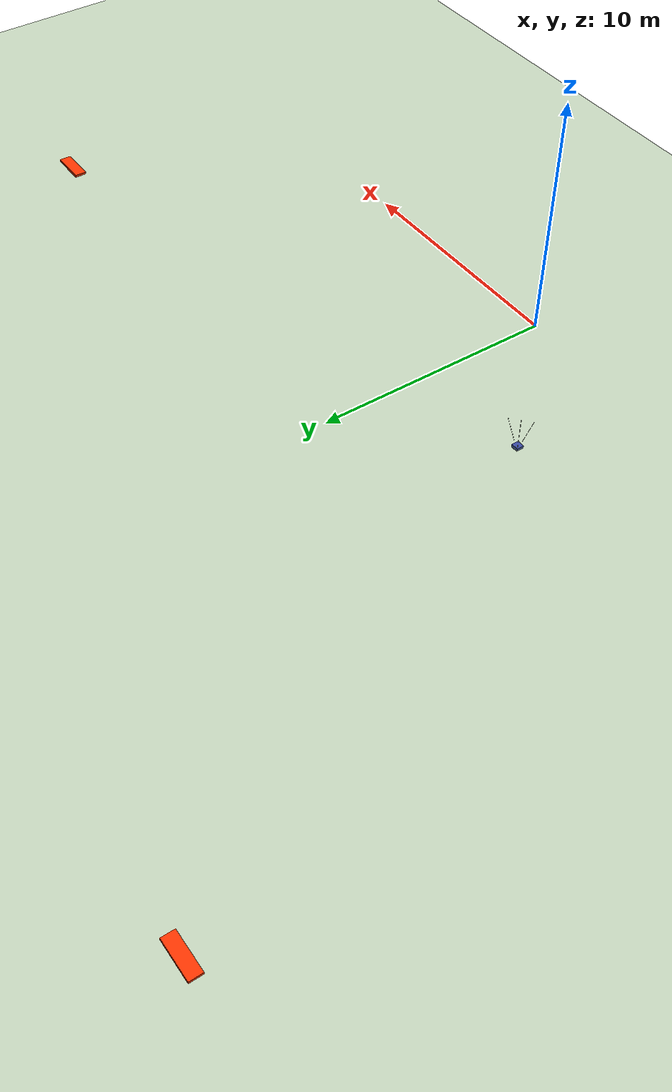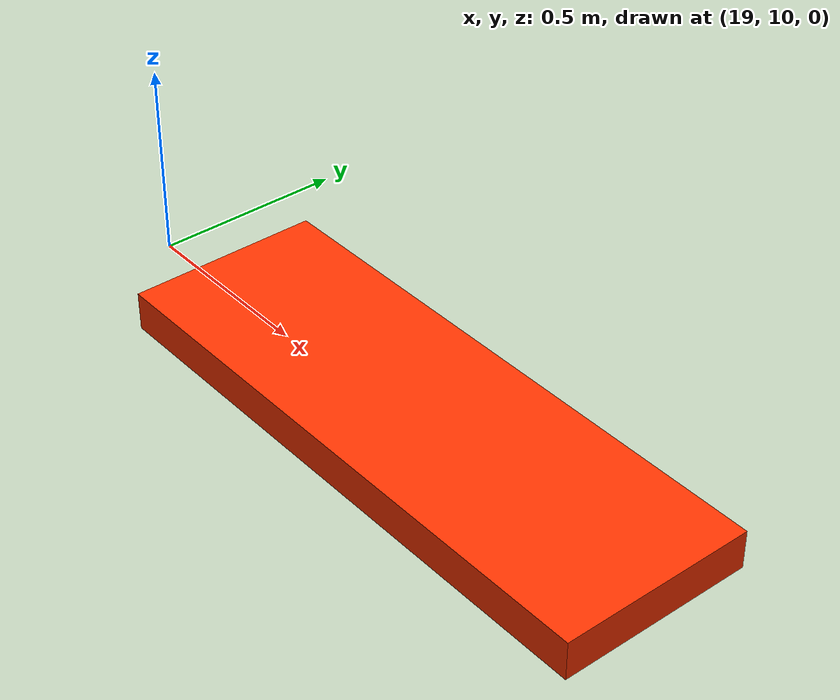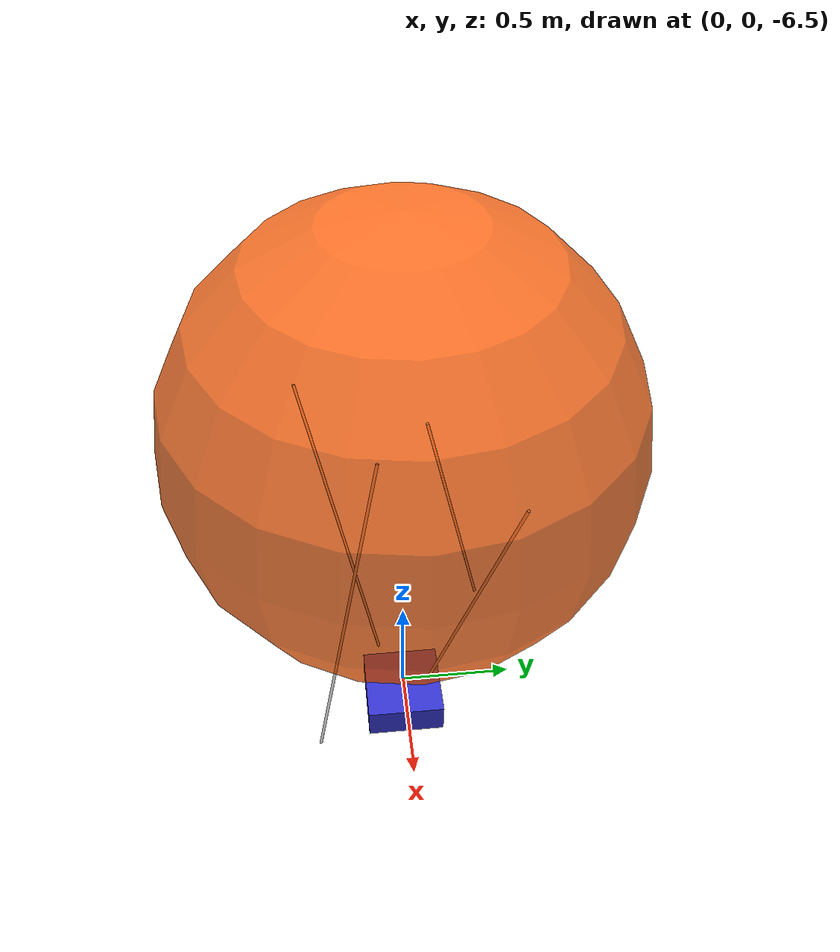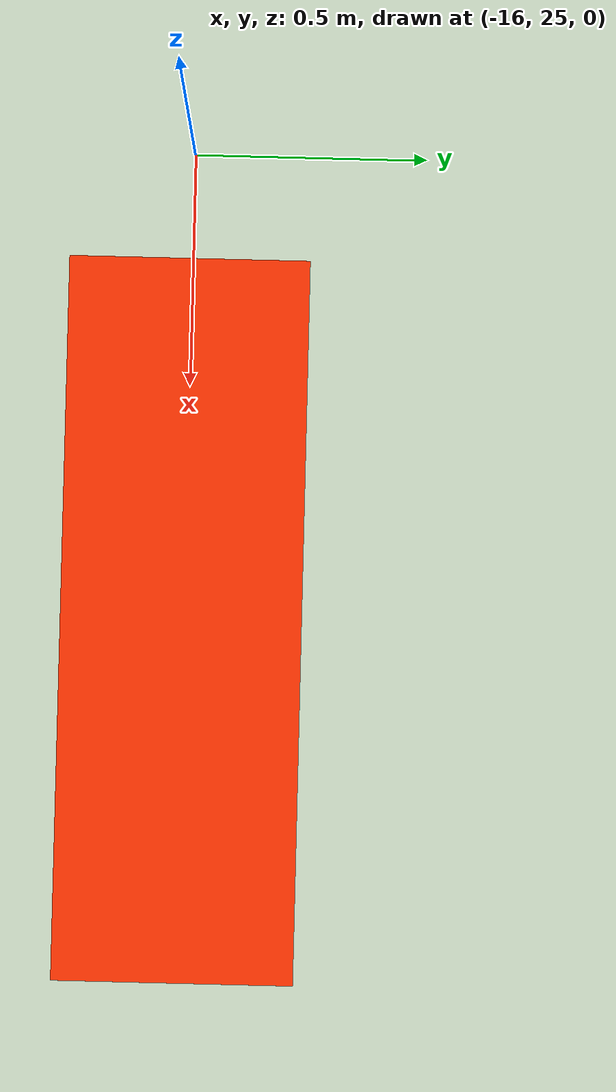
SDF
<sdf version="1.9">
 <world name="sar_parachute_demo">
  <physics name="1ms" type="ignored">
   <max_step_size>0.001</max_step_size>
   <real_time_factor>1.0</real_time_factor>
  </physics>
  <plugin filename="gz-sim-physics-system" name="gz::sim::systems::Physics"/>
  <plugin filename="gz-sim-user-commands-system" name="gz::sim::systems::UserCommands"/>
  <plugin filename="gz-sim-scene-broadcaster-system" name="gz::sim::systems::SceneBroadcaster"/>
  <plugin filename="gz-sim-sensors-system" name="gz::sim::systems::Sensors">
   <render_engine>ogre2</render_engine>
  </plugin>
  <plugin filename="gz-sim-imu-system" name="gz::sim::systems::Imu"/>
  <plugin filename="gz-sim-air-pressure-system" name="gz::sim::systems::AirPressure"/>
  <plugin filename="gz-sim-magnetometer-system" name="gz::sim::systems::Magnetometer"/>
  <light name="sunlight" type="directional">
   <pose>0 0 500 0 0 0</pose>
   <diffuse>0.9 0.9 0.9 1</diffuse>
   <specular>0.3 0.3 0.3 1</specular>
   <direction>-0.5 0.2 -0.9</direction>
  </light>
  <model name="ground_plane">
   <static>true</static>
   <link name="link">
    <collision name="collision">
     <geometry><plane><normal>0 0 1</normal><size>200 200</size></plane></geometry>
    </collision>
    <visual name="visual">
     <geometry><plane><normal>0 0 1</normal><size>200 200</size></plane></geometry>
     <material><ambient>0.3 0.5 0.2 1</ambient><diffuse>0.3 0.5 0.2 1</diffuse></material>
    </visual>
   </link>
  </model>
  <model name="survivor_1">
   <static>true</static>
   <pose>20 10 0.05 0 0 0</pose>
   <link name="link">
    <visual name="visual">
     <geometry><box><size>1.5 0.5 0.1</size></box></geometry>
     <material><ambient>1.0 0.2 0.0 1</ambient><diffuse>1.0 0.2 0.0 1</diffuse></material>
    </visual>
    <collision name="col"><geometry><box><size>1.5 0.5 0.1</size></box></geometry></collision>
   </link>
  </model>
  <model name="survivor_2">
   <static>true</static>
   <pose>-15 25 0.05 0 0 0</pose>
   <link name="link">
    <visual name="visual">
     <geometry><box><size>1.5 0.5 0.1</size></box></geometry>
     <material><ambient>1.0 0.2 0.0 1</ambient><diffuse>1.0 0.2 0.0 1</diffuse></material>
    </visual>
    <collision name="col"><geometry><box><size>1.5 0.5 0.1</size></box></geometry></collision>
   </link>
  </model>
  <model name="parachute">
   <pose>0 0 -5 0 0 0</pose>
   <static>false</static>
   <link name="canopy">
    <inertial>
     <mass>0.15</mass>
     <inertia><ixx>0.02</ixx><iyy>0.02</iyy><izz>0.02</izz><ixy>0</ixy><ixz>0</ixz><iyz>0</iyz></inertia>
    </inertial>
    <visual name="dome">
     <geometry><sphere><radius>0.9</radius></sphere></geometry>
     <material><ambient>1.0 0.35 0.0 0.8</ambient><diffuse>1.0 0.35 0.0 0.8</diffuse></material>
    </visual>
    <collision name="dome_col"><geometry><sphere><radius>0.9</radius></sphere></geometry></collision>
    <visual name="line_1">
     <pose>0.25 0.25 -0.7 0 0.3 0.785</pose>
     <geometry><cylinder><radius>0.006</radius><length>1.4</length></cylinder></geometry>
     <material><ambient>0.95 0.95 0.95 1</ambient><diffuse>0.95 0.95 0.95 1</diffuse></material>
    </visual>
    <visual name="line_2">
     <pose>-0.25 0.25 -0.7 0 -0.3 2.356</pose>
     <geometry><cylinder><radius>0.006</radius><length>1.4</length></cylinder></geometry>
     <material><ambient>0.95 0.95 0.95 1</ambient><diffuse>0.95 0.95 0.95 1</diffuse></material>
    </visual>
    <visual name="line_3">
     <pose>-0.25 -0.25 -0.7 0 0.3 3.927</pose>
     <geometry><cylinder><radius>0.006</radius><length>1.4</length></cylinder></geometry>
     <material><ambient>0.95 0.95 0.95 1</ambient><diffuse>0.95 0.95 0.95 1</diffuse></material>
    </visual>
    <visual name="line_4">
     <pose>0.25 -0.25 -0.7 0 -0.3 5.498</pose>
     <geometry><cylinder><radius>0.006</radius><length>1.4</length></cylinder></geometry>
     <material><ambient>0.95 0.95 0.95 1</ambient><diffuse>0.95 0.95 0.95 1</diffuse></material>
    </visual>
    <visual name="payload">
     <pose>0 0 -1.6 0 0 0</pose>
     <geometry><box><size>0.35 0.35 0.15</size></box></geometry>
     <material><ambient>0.2 0.2 0.8 1</ambient><diffuse>0.2 0.2 0.8 1</diffuse></material>
    </visual>
   </link>
  </model>
 </world>
</sdf>
